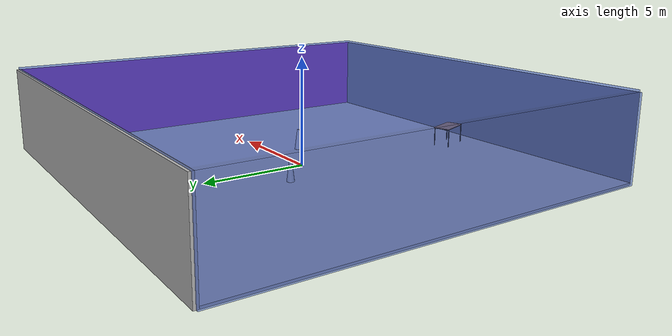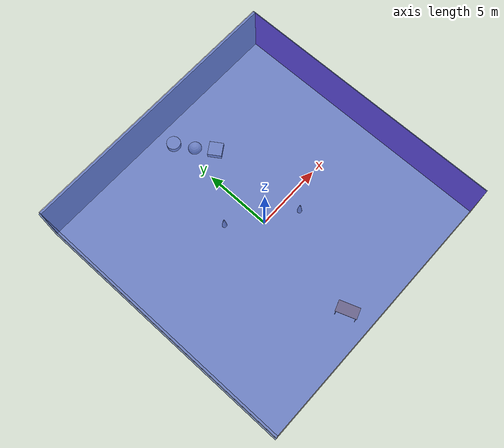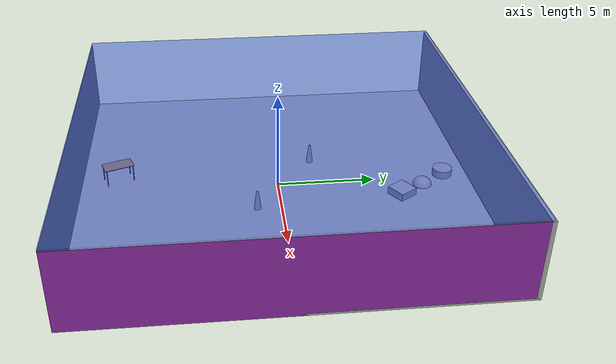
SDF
<sdf version="1.4">
 <world name="default">
  <physics type="ode">
   <max_step_size>0.001</max_step_size>
   <real_time_factor>1</real_time_factor>
   <real_time_update_rate>1000</real_time_update_rate>
   <gravity>0 0 -9.8</gravity>
  </physics>
  <scene><ambient>0.4 0.4 0.4 1</ambient><background>0.7 0.7 0.7 1</background><shadows>1</shadows></scene>
  <model name="Surrounding">
   <static>1</static>
   <link name="Ceiling">
    <collision name="Ceiling_Collision"><geometry><box><size>20 20 0.1</size></box></geometry></collision>
    <visual name="Ceiling_Visual">
     <geometry><box><size>20 20 0.1</size></box></geometry>
     <material>
      <script><uri>file://media/materials/scripts/gazebo.material</uri><name>Gazebo/BlueTransparent</name></script>
     </material>
    </visual>
    <pose>0 0 4.05 0 0 0</pose>
   </link>
   <link name="Wall_South">
    <collision name="Wall_South_Collision">
     <geometry><box><size>20 0 4</size></box></geometry>
     <pose>0 0 2 0 -0 0</pose>
    </collision>
    <visual name="Wall_South_Visual">
     <pose>0 0 2 0 -0 0</pose>
     <geometry><box><size>20 0 4</size></box></geometry>
     <material>
      <script><uri>file://media/materials/scripts/gazebo.material</uri><name>Gazebo/GreyGradientSky</name></script>
     </material>
    </visual>
    <velocity_decay><linear>0</linear><angular>0</angular></velocity_decay>
    <pose>0 -10 0 0 -0 0</pose>
   </link>
   <link name="Wall_East">
    <collision name="Wall_21_Collision">
     <geometry><box><size>20 0 4</size></box></geometry>
     <pose>0 0 2 0 -0 0</pose>
    </collision>
    <visual name="Wall_21_Visual">
     <pose>0 0 2 0 -0 0</pose>
     <geometry><box><size>20 0 4</size></box></geometry>
     <material>
      <script><uri>file://media/materials/scripts/gazebo.material</uri><name>Gazebo/Purple</name></script>
     </material>
    </visual>
    <velocity_decay><linear>0</linear><angular>0</angular></velocity_decay>
    <pose>10 0 0 0 -0 1.5708</pose>
   </link>
   <link name="Wall_North">
    <collision name="Wall_22_Collision">
     <geometry><box><size>20 0.2 4</size></box></geometry>
     <pose>0 0 2 0 -0 0</pose>
    </collision>
    <visual name="Wall_22_Visual">
     <pose>0 0 2 0 -0 0</pose>
     <geometry><box><size>20 0.2 4</size></box></geometry>
     <material>
      <script><uri>file://media/materials/scripts/gazebo.material</uri><name>Gazebo/LightOff</name></script>
     </material>
    </visual>
    <velocity_decay><linear>0</linear><angular>0</angular></velocity_decay>
    <pose>0 10 0 0 -0 0</pose>
   </link>
   <link name="Wall_West">
    <collision name="Wall_23_Collision">
     <geometry><box><size>20 0.2 4</size></box></geometry>
     <pose>0 0 2 0 -0 0</pose>
    </collision>
    <visual name="Wall_23_Visual">
     <pose>0 0 2 0 -0 0</pose>
     <geometry><box><size>20 0.2 4</size></box></geometry>
     <material>
      <script><uri>file://media/materials/scripts/gazebo.material</uri><name>Gazebo/BlueTransparent</name></script>
     </material>
    </visual>
    <velocity_decay><linear>0</linear><angular>0</angular></velocity_decay>
    <pose>-10 0 0 0 0 -1.5708</pose>
   </link>
   <link name="Ground_link">
    <collision name="collision">
     <pose>0 0 .05 0 -0 0</pose>
     <geometry><box><size>20 20 0.1</size></box></geometry>
    </collision>
    <visual name="visual">
     <pose>0 0 .05 0 -0 0</pose>
     <geometry><box><size>20 20 0.1</size></box></geometry>
     <material>
      <script><uri>file://media/materials/scripts/gazebo.material</uri><name>Gazebo/JointAnchor</name></script>
     </material>
    </visual>
   </link>
   <static>1</static>
  </model>
  <spherical_coordinates>
   <surface_model>EARTH_WGS84</surface_model>
   <latitude_deg>0</latitude_deg>
   <longitude_deg>0</longitude_deg>
   <elevation>0</elevation>
   <heading_deg>0</heading_deg>
  </spherical_coordinates>
  <light name="lightball_0" type="diffuse">
   <diffuse>0.8 0.8 0.8 1</diffuse>
   <specular>0.2 0.2 0.2 1</specular>
   <attenuation>
    <range>100</range>
    <constant>0.7</constant>
    <linear>0.01</linear>
    <quadratic>0.001</quadratic>
   </attenuation>
   <direction>-0.5 0.1 -0.9</direction>
   <pose>-6.24067625755 9.41542601648 3.78606738 0 0 0</pose>
  </light>
  <light name="lightball_1" type="diffuse">
   <diffuse>0.8 0.8 0.8 1</diffuse>
   <specular>0.2 0.2 0.2 1</specular>
   <attenuation>
    <range>100</range>
    <constant>0.7</constant>
    <linear>0.01</linear>
    <quadratic>0.001</quadratic>
   </attenuation>
   <direction>-0.5 0.1 -0.9</direction>
   <pose>7.56542732728 4.06654050595 0.525100992117 0 0 0</pose>
  </light>
  <light name="lightball_2" type="diffuse">
   <diffuse>0.8 0.8 0.8 1</diffuse>
   <specular>0.2 0.2 0.2 1</specular>
   <attenuation>
    <range>100</range>
    <constant>0.7</constant>
    <linear>0.01</linear>
    <quadratic>0.001</quadratic>
   </attenuation>
   <direction>-0.5 0.1 -0.9</direction>
   <pose>2.85626530334 6.74354447035 2.36431822841 0 0 0</pose>
  </light>
  <light name="lightball_3" type="diffuse">
   <diffuse>0.8 0.8 0.8 1</diffuse>
   <specular>0.2 0.2 0.2 1</specular>
   <attenuation>
    <range>100</range>
    <constant>0.7</constant>
    <linear>0.01</linear>
    <quadratic>0.001</quadratic>
   </attenuation>
   <direction>-0.5 0.1 -0.9</direction>
   <pose>-3.45366548396 6.31408196418 1.93256922614 0 0 0</pose>
  </light>
  <light name="lightball_4" type="diffuse">
   <diffuse>0.8 0.8 0.8 1</diffuse>
   <specular>0.2 0.2 0.2 1</specular>
   <attenuation>
    <range>100</range>
    <constant>0.7</constant>
    <linear>0.01</linear>
    <quadratic>0.001</quadratic>
   </attenuation>
   <direction>-0.5 0.1 -0.9</direction>
   <pose>8.3926261075 -4.02132291114 1.28022099805 0 0 0</pose>
  </light>
  <light name="lightball_5" type="diffuse">
   <diffuse>0.8 0.8 0.8 1</diffuse>
   <specular>0.2 0.2 0.2 1</specular>
   <attenuation>
    <range>100</range>
    <constant>0.7</constant>
    <linear>0.01</linear>
    <quadratic>0.001</quadratic>
   </attenuation>
   <direction>-0.5 0.1 -0.9</direction>
   <pose>-9.24590412067 -1.71364393465 2.31743066099 0 0 0</pose>
  </light>
  <light name="lightball_6" type="diffuse">
   <diffuse>0.8 0.8 0.8 1</diffuse>
   <specular>0.2 0.2 0.2 1</specular>
   <attenuation>
    <range>100</range>
    <constant>0.7</constant>
    <linear>0.01</linear>
    <quadratic>0.001</quadratic>
   </attenuation>
   <direction>-0.5 0.1 -0.9</direction>
   <pose>0.00688815368943 5.03684150496 1.6578450277 0 0 0</pose>
  </light>
  <light name="lightball_7" type="diffuse">
   <diffuse>0.8 0.8 0.8 1</diffuse>
   <specular>0.2 0.2 0.2 1</specular>
   <attenuation>
    <range>100</range>
    <constant>0.7</constant>
    <linear>0.01</linear>
    <quadratic>0.001</quadratic>
   </attenuation>
   <direction>-0.5 0.1 -0.9</direction>
   <pose>9.61000105797 6.28969853446 3.67996440534 0 0 0</pose>
  </light>
  <light name="lightball_8" type="diffuse">
   <diffuse>0.8 0.8 0.8 1</diffuse>
   <specular>0.2 0.2 0.2 1</specular>
   <attenuation>
    <range>100</range>
    <constant>0.7</constant>
    <linear>0.01</linear>
    <quadratic>0.001</quadratic>
   </attenuation>
   <direction>-0.5 0.1 -0.9</direction>
   <pose>9.4098404871 5.02986865676 2.01669765517 0 0 0</pose>
  </light>
  <light name="lightball_9" type="diffuse">
   <diffuse>0.8 0.8 0.8 1</diffuse>
   <specular>0.2 0.2 0.2 1</specular>
   <attenuation>
    <range>100</range>
    <constant>0.7</constant>
    <linear>0.01</linear>
    <quadratic>0.001</quadratic>
   </attenuation>
   <direction>-0.5 0.1 -0.9</direction>
   <pose>-2.85869089942 1.83492809716 2.50753756555 0 0 0</pose>
  </light>
  <light name="lightball_10" type="diffuse">
   <diffuse>0.8 0.8 0.8 1</diffuse>
   <specular>0.2 0.2 0.2 1</specular>
   <attenuation>
    <range>100</range>
    <constant>0.7</constant>
    <linear>0.01</linear>
    <quadratic>0.001</quadratic>
   </attenuation>
   <direction>-0.5 0.1 -0.9</direction>
   <pose>8.09934982231 -6.97354240289 2.9897091833 0 0 0</pose>
  </light>
  <include><uri>model://table</uri><pose>-1.0515928694 -8.14390088198 0 0 0 1.91253149533</pose></include>
  <include>
   <uri>model://construction_cone</uri>
   <pose>-1.98322659016 1.88004327255 0 0 0 1.25158683071</pose>
  </include>
  <include>
   <uri>model://construction_cone</uri>
   <pose>2.21665902191 -1.21886966766 0 0 0 1.7150069018</pose>
  </include>
  <include>
   <uri>model://textured_shapes</uri>
   <pose>0.815465966635 7.36129799305 0 0 0 0.580998635071</pose>
  </include>
 </world>
</sdf>

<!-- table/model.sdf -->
<sdf version="1.5">
  <model name="table">
    <static>true</static>
    <link name="link">
      <collision name="surface">
        <pose>0 0 1.0 0 0 0</pose>
        <geometry>
          <box>
            <size>1.5 0.8 0.03</size>
          </box>
        </geometry>
        <surface>
          <friction>
            <ode>
              <mu>0.6</mu>
              <mu2>0.6</mu2>
            </ode>
          </friction>
        </surface>
      </collision>
      <visual name="visual1">
        <pose>0 0 1.0 0 0 0</pose>
        <geometry>
          <box>
            <size>1.5 0.8 0.03</size>
          </box>
        </geometry>
        <material>
          <script>
            <uri>model://media/materials/scripts/gazebo.material</uri>
            <name>Gazebo/Wood</name>
          </script>
        </material>
      </visual>
      <collision name="front_left_leg">
        <pose>0.68 0.38 0.5 0 0 0</pose>
        <geometry>
          <cylinder>
            <radius>0.02</radius>
            <length>1.0</length>
          </cylinder>
        </geometry>
      </collision>
      <visual name="front_left_leg">
        <pose>0.68 0.38 0.5 0 0 0</pose>
        <geometry>
          <cylinder>
            <radius>0.02</radius>
            <length>1.0</length>
          </cylinder>
        </geometry>
        <material>
          <script>
            <uri>model://media/materials/scripts/gazebo.material</uri>
            <name>Gazebo/Grey</name>
          </script>
        </material>
      </visual>
      <collision name="front_right_leg">
        <pose>0.68 -0.38 0.5 0 0 0</pose>
        <geometry>
          <cylinder>
            <radius>0.02</radius>
            <length>1.0</length>
          </cylinder>
        </geometry>
      </collision>
      <visual name="front_right_leg">
        <pose>0.68 -0.38 0.5 0 0 0</pose>
        <geometry>
          <cylinder>
            <radius>0.02</radius>
            <length>1.0</length>
          </cylinder>
        </geometry>
        <material>
          <script>
            <uri>model://media/materials/scripts/gazebo.material</uri>
            <name>Gazebo/Grey</name>
          </script>
        </material>
      </visual>
      <collision name="back_right_leg">
        <pose>-0.68 -0.38 0.5 0 0 0</pose>
        <geometry>
          <cylinder>
            <radius>0.02</radius>
            <length>1.0</length>
          </cylinder>
        </geometry>
      </collision>
      <visual name="back_right_leg">
        <pose>-0.68 -0.38 0.5 0 0 0</pose>
        <geometry>
          <cylinder>
            <radius>0.02</radius>
            <length>1.0</length>
          </cylinder>
        </geometry>
        <material>
          <script>
            <uri>model://media/materials/scripts/gazebo.material</uri>
            <name>Gazebo/Grey</name>
          </script>
        </material>
      </visual>
      <collision name="back_left_leg">
        <pose>-0.68 0.38 0.5 0 0 0</pose>
        <geometry>
          <cylinder>
            <radius>0.02</radius>
            <length>1.0</length>
          </cylinder>
        </geometry>
      </collision>
      <visual name="back_left_leg">
        <pose>-0.68 0.38 0.5 0 0 0</pose>
        <geometry>
          <cylinder>
            <radius>0.02</radius>
            <length>1.0</length>
          </cylinder>
        </geometry>
        <material>
          <script>
            <uri>model://media/materials/scripts/gazebo.material</uri>
            <name>Gazebo/Grey</name>
          </script>
        </material>
      </visual>
    </link>
  </model>
</sdf>

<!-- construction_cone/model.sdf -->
<sdf version="1.5">
  <model name="Construction Cone">
    <link name="link">
      <collision name="collision">
        <geometry>
          <mesh>
            <scale>10 10 10</scale>
            <uri>file://isr-testbed/construction_cone/meshes/construction_cone.dae</uri>
          </mesh>
        </geometry>
      </collision>
      <visual name="visual">
        <geometry>
          <mesh>
            <scale>10 10 10</scale>
            <uri>file://isr-testbed/construction_cone/meshes/construction_cone.dae</uri>
          </mesh>
        </geometry>
      </visual>
    </link>
  </model>
</sdf>

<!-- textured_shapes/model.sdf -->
<sdf version="1.6">
  <model name="textured_shapes">
    <pose>0 0 0.5 0 0 0</pose>
    <link name="box">
      <pose>0 -1.5 0 0 0 0</pose>
      <collision name="collision">
        <geometry>
          <box>
            <size>1 1 1</size>
          </box>
        </geometry>
      </collision>
      <visual name="visual">
        <geometry>
          <box>
            <size>1 1 1</size>
          </box>
        </geometry>
        <material>
          <script>
            <uri>model://../model_source/models/textured_shapes/materials/scripts</uri>
            <uri>model://../model_source/models/textured_shapes/materials/textures</uri>
            <name>TexturedShape/Squares</name>
          </script>
        </material>
      </visual>
    </link>
    <link name="sphere">
      <collision name="collision">
        <geometry>
          <sphere>
            <radius>0.5</radius>
          </sphere>
        </geometry>
      </collision>
      <visual name="visual">
        <geometry>
          <sphere>
            <radius>0.5</radius>
          </sphere>
        </geometry>
        <material>
          <script>
            <uri>model://../model_source/models/textured_shapes/materials/scripts</uri>
            <uri>model://../model_source/models/textured_shapes/materials/textures</uri>
            <name>TexturedShape/Squares</name>
          </script>
        </material>
      </visual>
    </link>
    <link name="cylinder">
      <pose>0 1.5 0 0 0 0</pose>
      <collision name="collision">
        <geometry>
          <cylinder>
            <radius>0.5</radius>
            <length>1</length>
          </cylinder>
        </geometry>
      </collision>
      <visual name="visual">
        <geometry>
          <cylinder>
            <radius>0.5</radius>
            <length>1</length>
          </cylinder>
        </geometry>
        <material>
          <script>
            <uri>model://../model_source/models/textured_shapes/materials/scripts</uri>
            <uri>model://../model_source/models/textured_shapes/materials/textures</uri>
            <name>TexturedShape/Squares</name>
          </script>
        </material>
      </visual>
    </link>
  </model>
</sdf>
